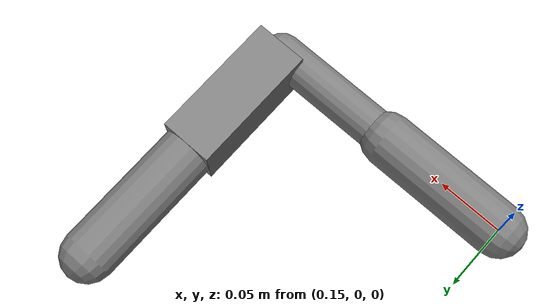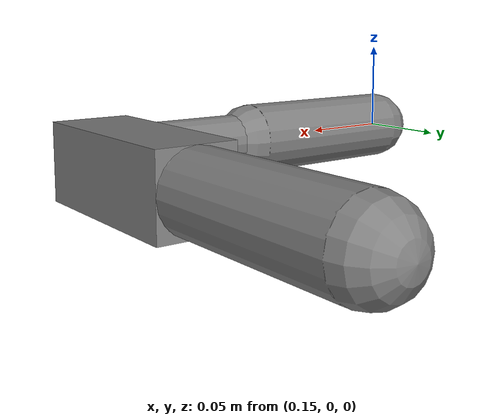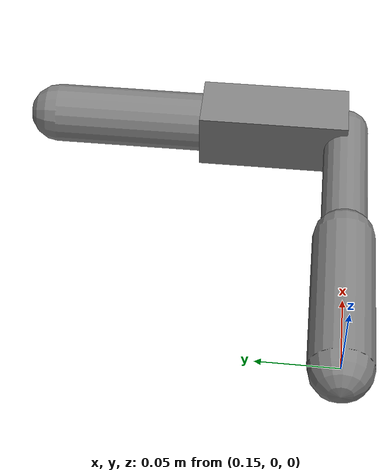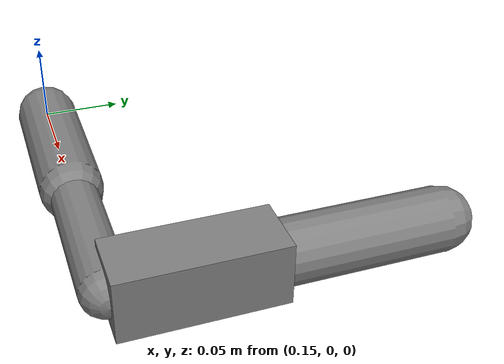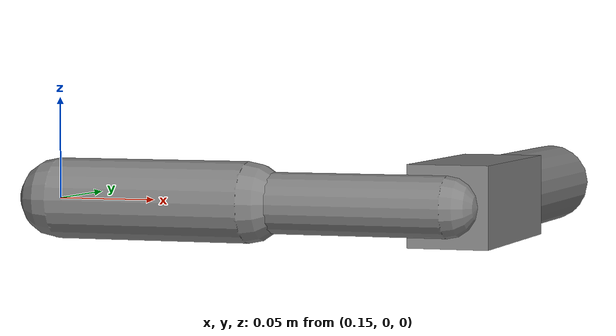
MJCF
<mujoco>
  <option integrator="implicit">
    <flag constraint="disable" energy="enable"/>
  </option>
  <worldbody>
    <light pos="0 0 1"/>
    <geom type="plane" size="1 1 .01" pos="0 0 -1"/>
    <body pos="0.15 0 0">
      <joint type="hinge" axis="0 1 0"/>
      <geom type="capsule" size="0.02" fromto="0 0 0 .1 0 0"/>
      <body pos="0.1 0 0">
        <joint type="slide" axis="1 0 0" stiffness="200"/>
        <geom type="capsule" size="0.015" fromto="-.1 0 0 .1 0 0"/>
        <body pos=".1 0 0">
          <joint type="ball"/>
          <geom type="box" size=".02" fromto="0 0 0 0 .1 0"/>
          <body pos="0 .1 0">
            <joint axis="1 0 0"/>
            <geom type="capsule" size="0.02" fromto="0 0 0 0 .1 0"/>
          </body>
        </body>
      </body>
    </body>
  </worldbody>
</mujoco>
